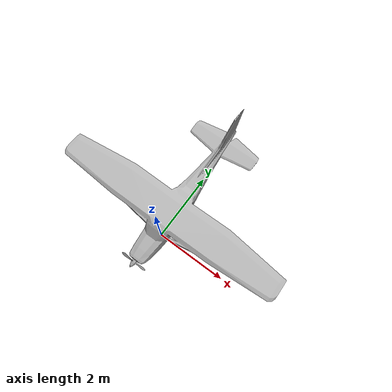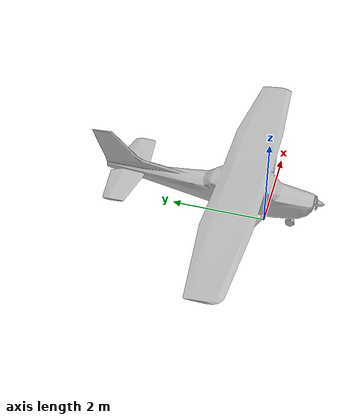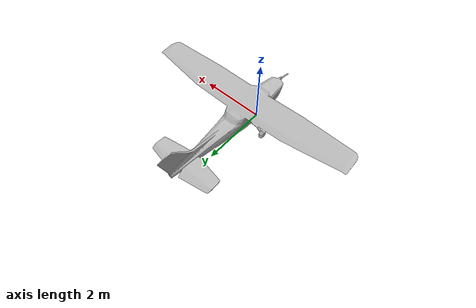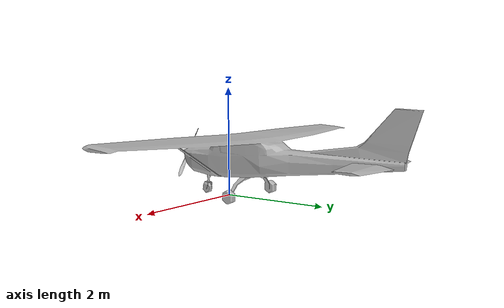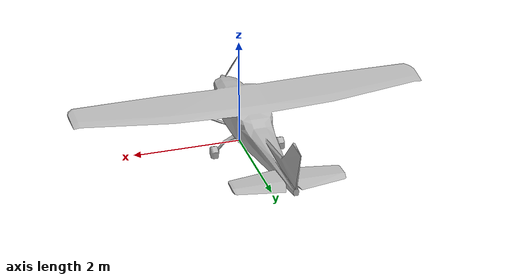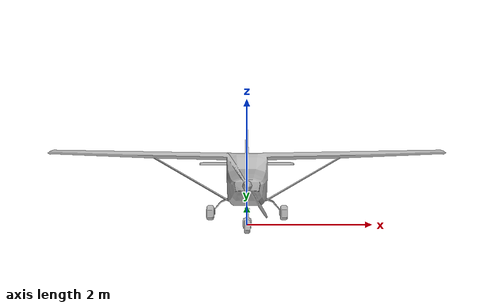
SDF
<?xml version="1.0"?>
<sdf version="1.9">
  <model name="airplane">
    <static>true</static>
    <link name="link">
      <visual name="visual">
        <!-- Source OBJ is Y-up; rotate it into Gazebo's Z-up frame. -->
        <pose>0 0 0 1.57079632679 0 0</pose>
        <geometry>
          <mesh>
            <uri>model://cmra_models/airplane/airplane.obj</uri>
            <scale>0.05 0.05 0.05</scale>
          </mesh>
        </geometry>
      </visual>
    </link>
  </model>
</sdf>
